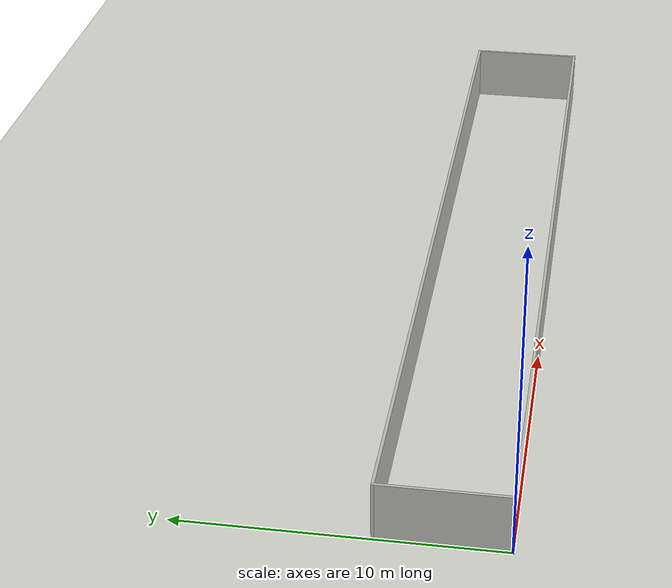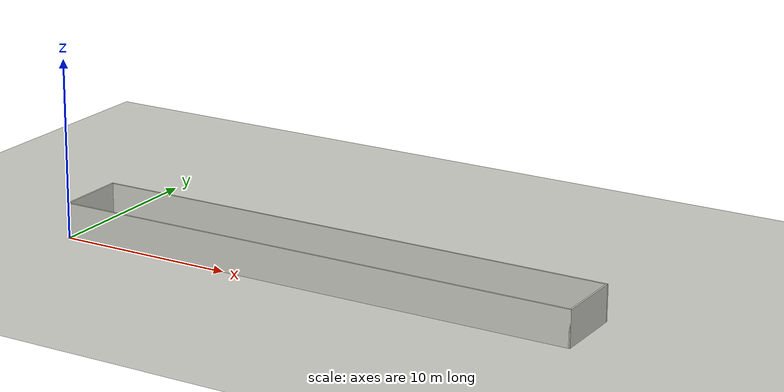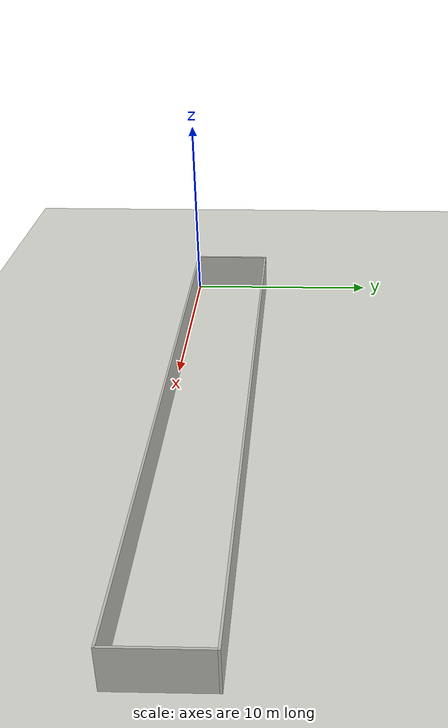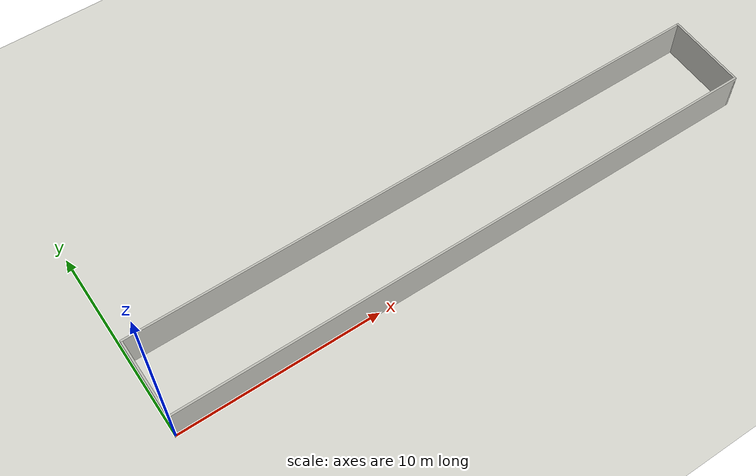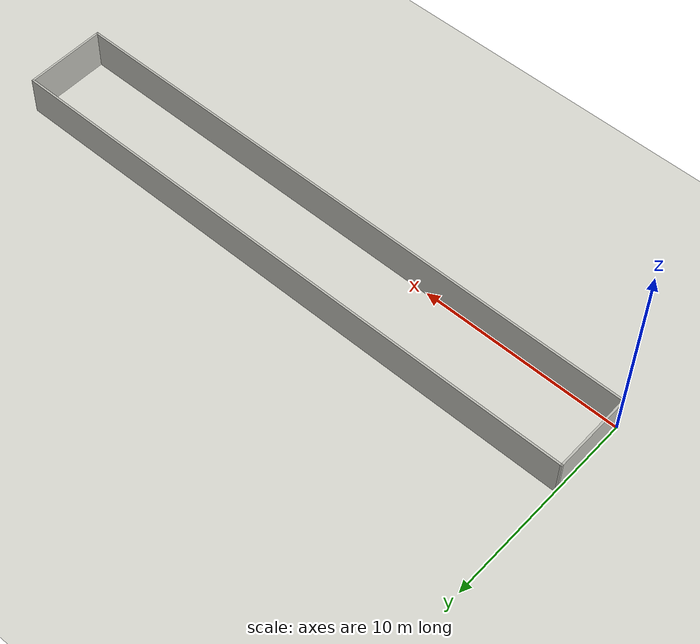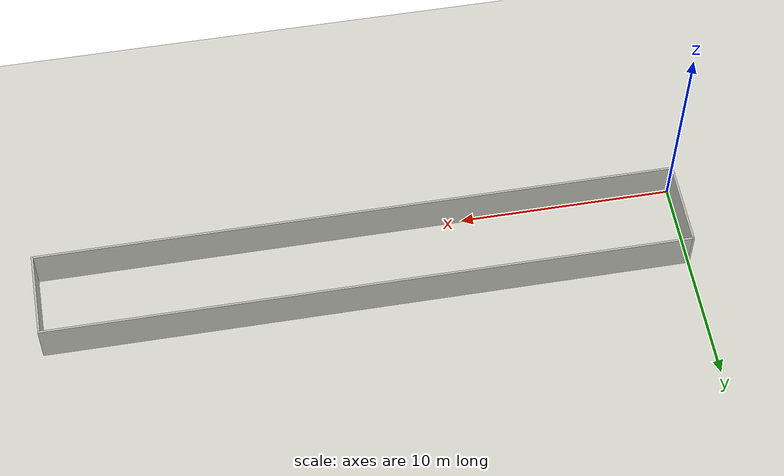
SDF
<sdf version="1.9">
 <world name="walking_actors">
  <physics name="1ms" type="ignore">
   <max_step_size>0.001</max_step_size>
   <real_time_factor>1.0</real_time_factor>
  </physics>
  <plugin filename="gz-sim-physics-system" name="gz::sim::systems::Physics"/>
  <plugin filename="gz-sim-user-commands-system" name="gz::sim::systems::UserCommands"/>
  <plugin filename="gz-sim-scene-broadcaster-system" name="gz::sim::systems::SceneBroadcaster"/>
  <plugin filename="gz-sim-sensors-system" name="gz::sim::systems::Sensors">
   <render_engine>ogre2</render_engine>
  </plugin>
  <plugin filename="gz-sim-imu-system" name="gz::sim::systems::Imu"/>
  <plugin filename="gz-sim-contact-system" name="gz::sim::systems::Contact"/>
  <scene><ambient>0.6 0.6 0.6 1</ambient><background>0.8 0.85 0.9 1</background><shadows>false</shadows></scene>
  <light type="directional" name="sun">
   <cast_shadows>false</cast_shadows>
   <pose>0 0 10 0 0 0</pose>
   <diffuse>0.9 0.9 0.9 1</diffuse>
   <direction>-0.4 0.2 -0.9</direction>
  </light>
  <model name="ground_plane">
   <static>true</static>
   <link name="link">
    <collision name="collision">
     <geometry><plane><normal>0 0 1</normal><size>200 200</size></plane></geometry>
     <surface><friction><ode><mu>0.6</mu><mu2>0.6</mu2></ode></friction></surface>
    </collision>
    <visual name="visual">
     <geometry><plane><normal>0 0 1</normal><size>200 200</size></plane></geometry>
     <material><ambient>0.85 0.85 0.82 1</ambient><diffuse>0.85 0.85 0.82 1</diffuse></material>
    </visual>
   </link>
  </model>
  <model name="wall_0">
   <static>true</static>
   <pose>15.0000 0.0000 1.0000 0 0 0.0000</pose>
   <link name="link">
    <collision name="collision"><geometry><box><size>30.1000 0.1000 2.0000</size></box></geometry></collision>
    <visual name="visual">
     <geometry><box><size>30.1000 0.1000 2.0000</size></box></geometry>
     <material><ambient>0.75 0.75 0.72 1</ambient><diffuse>0.75 0.75 0.72 1</diffuse></material>
    </visual>
   </link>
  </model>
  <model name="wall_1">
   <static>true</static>
   <pose>30.0000 2.0000 1.0000 0 0 1.5708</pose>
   <link name="link">
    <collision name="collision"><geometry><box><size>4.1000 0.1000 2.0000</size></box></geometry></collision>
    <visual name="visual">
     <geometry><box><size>4.1000 0.1000 2.0000</size></box></geometry>
     <material><ambient>0.75 0.75 0.72 1</ambient><diffuse>0.75 0.75 0.72 1</diffuse></material>
    </visual>
   </link>
  </model>
  <model name="wall_2">
   <static>true</static>
   <pose>15.0000 4.0000 1.0000 0 0 3.1416</pose>
   <link name="link">
    <collision name="collision"><geometry><box><size>30.1000 0.1000 2.0000</size></box></geometry></collision>
    <visual name="visual">
     <geometry><box><size>30.1000 0.1000 2.0000</size></box></geometry>
     <material><ambient>0.75 0.75 0.72 1</ambient><diffuse>0.75 0.75 0.72 1</diffuse></material>
    </visual>
   </link>
  </model>
  <model name="wall_3">
   <static>true</static>
   <pose>0.0000 2.0000 1.0000 0 0 -1.5708</pose>
   <link name="link">
    <collision name="collision"><geometry><box><size>4.1000 0.1000 2.0000</size></box></geometry></collision>
    <visual name="visual">
     <geometry><box><size>4.1000 0.1000 2.0000</size></box></geometry>
     <material><ambient>0.75 0.75 0.72 1</ambient><diffuse>0.75 0.75 0.72 1</diffuse></material>
    </visual>
   </link>
  </model>
 </world>
</sdf>
